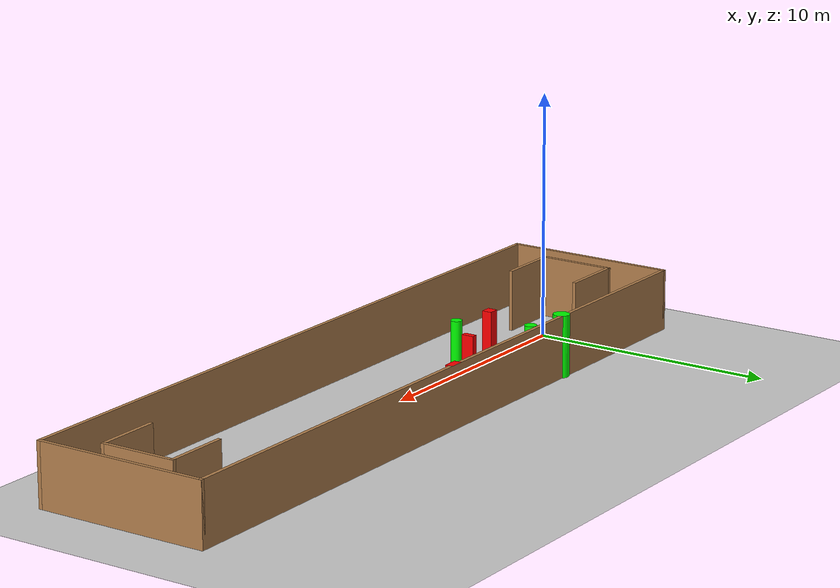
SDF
<sdf version="1.7">
 <world name="default">
  <light name="sun" type="directional">
   <pose>0 0 10 0 -0 0</pose>
   <diffuse>0.8 0.8 0.8 1</diffuse>
   <specular>0.2 0.2 0.2 1</specular>
   <attenuation>
    <range>1000</range>
    <constant>0.9</constant>
    <linear>0.01</linear>
    <quadratic>0.001</quadratic>
   </attenuation>
   <direction>-0.5 0.1 -0.9</direction>
   <spot><inner_angle>0</inner_angle><outer_angle>0</outer_angle><falloff>0</falloff></spot>
  </light>
  <model name="ground_plane">
   <static>1</static>
   <link name="link">
    <collision name="collision">
     <geometry><plane><normal>0 0 1</normal><size>100 100</size></plane></geometry>
     <surface>
      <contact><collide_bitmask>65535</collide_bitmask></contact>
      <friction><ode><mu>100</mu><mu2>50</mu2></ode></friction>
     </surface>
    </collision>
    <visual name="visual">
     <cast_shadows>0</cast_shadows>
     <geometry><plane><normal>0 0 1</normal><size>100 100</size></plane></geometry>
     <material>
      <script><uri>file://media/materials/scripts/gazebo.material</uri><name>Gazebo/Grey</name></script>
     </material>
    </visual>
   </link>
  </model>
  <gravity>0 0 -9.8</gravity>
  <magnetic_field>6e-06 2.3e-05 -4.2e-05</magnetic_field>
  <atmosphere type="adiabatic"/>
  <physics type="ode">
   <max_step_size>0.001</max_step_size>
   <real_time_factor>1</real_time_factor>
   <real_time_update_rate>1000</real_time_update_rate>
  </physics>
  <scene><ambient>0.4 0.4 0.4 1</ambient><background>0.7 0.7 0.7 1</background><shadows>1</shadows></scene>
  <spherical_coordinates>
   <surface_model>EARTH_WGS84</surface_model>
   <latitude_deg>0</latitude_deg>
   <longitude_deg>0</longitude_deg>
   <elevation>0</elevation>
   <heading_deg>0</heading_deg>
  </spherical_coordinates>
  <model name="my_base_walls">
   <link name="Wall_0">
    <collision name="Wall_0_Collision">
     <geometry><box><size>7.15 0.15 2.5</size></box></geometry>
     <pose>0 0 1.25 0 -0 0</pose>
    </collision>
    <visual name="Wall_0_Visual">
     <pose>0 0 1.25 0 -0 0</pose>
     <geometry><box><size>7.15 0.15 2.5</size></box></geometry>
     <material>
      <script><uri>file://media/materials/scripts/gazebo.material</uri><name>Gazebo/Wood</name></script>
      <ambient>1 1 1 1</ambient>
     </material>
     <meta><layer>0</layer></meta>
    </visual>
    <pose>-15 0 0 0 -0 1.5708</pose>
   </link>
   <link name="Wall_10">
    <collision name="Wall_10_Collision">
     <geometry><box><size>2.65 0.15 2.5</size></box></geometry>
     <pose>0 0 1.25 0 -0 0</pose>
    </collision>
    <visual name="Wall_10_Visual">
     <pose>0 0 1.25 0 -0 0</pose>
     <geometry><box><size>2.65 0.15 2.5</size></box></geometry>
     <material>
      <script><uri>file://media/materials/scripts/gazebo.material</uri><name>Gazebo/Wood</name></script>
      <ambient>1 1 1 1</ambient>
     </material>
     <meta><layer>0</layer></meta>
    </visual>
    <pose>-12.75 -1.5 0 0 -0 0</pose>
   </link>
   <link name="Wall_12">
    <collision name="Wall_12_Collision">
     <geometry><box><size>2.65 0.15 2.5</size></box></geometry>
     <pose>0 0 1.25 0 -0 0</pose>
    </collision>
    <visual name="Wall_12_Visual">
     <pose>0 0 1.25 0 -0 0</pose>
     <geometry><box><size>2.65 0.15 2.5</size></box></geometry>
     <material>
      <script><uri>file://media/materials/scripts/gazebo.material</uri><name>Gazebo/Wood</name></script>
      <ambient>1 1 1 1</ambient>
     </material>
     <meta><layer>0</layer></meta>
    </visual>
    <pose>-12.75 1.5 0 0 -0 0</pose>
   </link>
   <link name="Wall_14">
    <collision name="Wall_14_Collision">
     <geometry><box><size>3.15 0.15 2.5</size></box></geometry>
     <pose>0 0 1.25 0 -0 0</pose>
    </collision>
    <visual name="Wall_14_Visual">
     <pose>0 0 1.25 0 -0 0</pose>
     <geometry><box><size>3.15 0.15 2.5</size></box></geometry>
     <material>
      <script><uri>file://media/materials/scripts/gazebo.material</uri><name>Gazebo/Wood</name></script>
      <ambient>1 1 1 1</ambient>
     </material>
     <meta><layer>0</layer></meta>
    </visual>
    <pose>14 0 0 0 -0 -1.5708</pose>
   </link>
   <link name="Wall_15">
    <collision name="Wall_15_Collision">
     <geometry><box><size>2.65 0.15 2.5</size></box></geometry>
     <pose>0 0 1.25 0 -0 0</pose>
    </collision>
    <visual name="Wall_15_Visual">
     <pose>0 0 1.25 0 -0 0</pose>
     <geometry><box><size>2.65 0.15 2.5</size></box></geometry>
     <material>
      <script><uri>file://media/materials/scripts/gazebo.material</uri><name>Gazebo/Wood</name></script>
      <ambient>1 1 1 1</ambient>
     </material>
     <meta><layer>0</layer></meta>
    </visual>
    <pose>12.75 -1.5 0 0 -0 3.14159</pose>
   </link>
   <link name="Wall_17">
    <collision name="Wall_17_Collision">
     <geometry><box><size>2.65 0.15 2.5</size></box></geometry>
     <pose>0 0 1.25 0 -0 0</pose>
    </collision>
    <visual name="Wall_17_Visual">
     <pose>0 0 1.25 0 -0 0</pose>
     <geometry><box><size>2.65 0.15 2.5</size></box></geometry>
     <material>
      <script><uri>file://media/materials/scripts/gazebo.material</uri><name>Gazebo/Wood</name></script>
      <ambient>1 1 1 1</ambient>
     </material>
     <meta><layer>0</layer></meta>
    </visual>
    <pose>12.75 1.5 0 0 -0 3.14159</pose>
   </link>
   <link name="Wall_2">
    <collision name="Wall_2_Collision">
     <geometry><box><size>30.15 0.15 2.5</size></box></geometry>
     <pose>0 0 1.25 0 -0 0</pose>
    </collision>
    <visual name="Wall_2_Visual">
     <pose>0 0 1.25 0 -0 0</pose>
     <geometry><box><size>30.15 0.15 2.5</size></box></geometry>
     <material>
      <script><uri>file://media/materials/scripts/gazebo.material</uri><name>Gazebo/Wood</name></script>
      <ambient>1 1 1 1</ambient>
     </material>
     <meta><layer>0</layer></meta>
    </visual>
    <pose>-0 -3.5 0 0 -0 0</pose>
   </link>
   <link name="Wall_4">
    <collision name="Wall_4_Collision">
     <geometry><box><size>30.15 0.15 2.5</size></box></geometry>
     <pose>0 0 1.25 0 -0 0</pose>
    </collision>
    <visual name="Wall_4_Visual">
     <pose>0 0 1.25 0 -0 0</pose>
     <geometry><box><size>30.15 0.15 2.5</size></box></geometry>
     <material>
      <script><uri>file://media/materials/scripts/gazebo.material</uri><name>Gazebo/Wood</name></script>
      <ambient>1 1 1 1</ambient>
     </material>
     <meta><layer>0</layer></meta>
    </visual>
    <pose>-0 3.5 0 0 -0 0</pose>
   </link>
   <link name="Wall_6">
    <collision name="Wall_6_Collision">
     <geometry><box><size>7.15 0.15 2.5</size></box></geometry>
     <pose>0 0 1.25 0 -0 0</pose>
    </collision>
    <visual name="Wall_6_Visual">
     <pose>0 0 1.25 0 -0 0</pose>
     <geometry><box><size>7.15 0.15 2.5</size></box></geometry>
     <material>
      <script><uri>file://media/materials/scripts/gazebo.material</uri><name>Gazebo/Wood</name></script>
      <ambient>1 1 1 1</ambient>
     </material>
     <meta><layer>0</layer></meta>
    </visual>
    <pose>15 0 0 0 -0 -1.5708</pose>
   </link>
   <link name="Wall_9">
    <collision name="Wall_9_Collision">
     <geometry><box><size>3.15 0.15 2.5</size></box></geometry>
     <pose>0 0 1.25 0 -0 0</pose>
    </collision>
    <visual name="Wall_9_Visual">
     <pose>0 0 1.25 0 -0 0</pose>
     <geometry><box><size>3.15 0.15 2.5</size></box></geometry>
     <material>
      <script><uri>file://media/materials/scripts/gazebo.material</uri><name>Gazebo/Wood</name></script>
      <ambient>1 1 1 1</ambient>
     </material>
     <meta><layer>0</layer></meta>
    </visual>
    <pose>-14 0 0 0 -0 -1.5708</pose>
   </link>
   <static>1</static>
   <pose>11.5 0 0 0 -0 0</pose>
  </model>
  <model name="cylinder1">
   <static>1</static>
   <link name="link">
    <inertial>
     <mass>1</mass>
     <inertia><ixx>0.5</ixx><ixy>0</ixy><ixz>0</ixz><iyy>0.5</iyy><iyz>0</iyz><izz>1</izz></inertia>
    </inertial>
    <collision name="collision">
     <geometry><cylinder><radius>0.33302244531675307</radius><length>2.5</length></cylinder></geometry>
    </collision>
    <visual name="visual">
     <geometry><cylinder><radius>0.33302244531675307</radius><length>2.5</length></cylinder></geometry>
     <material>
      <ambient>0 1 0 1</ambient>
      <diffuse>0 1 0 1</diffuse>
      <specular>0.1 0.1 0.1 1</specular>
      <emissive>0 0 0 0</emissive>
     </material>
    </visual>
   </link>
   <pose>3.9622024789772716 3.3529948881364495 1.25 0 0 0</pose>
  </model>
  <model name="cylinder2">
   <static>1</static>
   <link name="link">
    <inertial>
     <mass>1</mass>
     <inertia><ixx>0.5</ixx><ixy>0</ixy><ixz>0</ixz><iyy>0.5</iyy><iyz>0</iyz><izz>1</izz></inertia>
    </inertial>
    <collision name="collision">
     <geometry><cylinder><radius>0.24349036131550061</radius><length>2.5</length></cylinder></geometry>
    </collision>
    <visual name="visual">
     <geometry><cylinder><radius>0.24349036131550061</radius><length>2.5</length></cylinder></geometry>
     <material>
      <ambient>0 1 0 1</ambient>
      <diffuse>0 1 0 1</diffuse>
      <specular>0.1 0.1 0.1 1</specular>
      <emissive>0 0 0 0</emissive>
     </material>
    </visual>
   </link>
   <pose>5.860027484212127 3.167158260159316 1.25 0 0 0</pose>
  </model>
  <model name="cylinder3">
   <static>1</static>
   <link name="link">
    <inertial>
     <mass>1</mass>
     <inertia><ixx>0.5</ixx><ixy>0</ixy><ixz>0</ixz><iyy>0.5</iyy><iyz>0</iyz><izz>1</izz></inertia>
    </inertial>
    <collision name="collision">
     <geometry><cylinder><radius>0.22510452576443957</radius><length>2.5</length></cylinder></geometry>
    </collision>
    <visual name="visual">
     <geometry><cylinder><radius>0.22510452576443957</radius><length>2.5</length></cylinder></geometry>
     <material>
      <ambient>0 1 0 1</ambient>
      <diffuse>0 1 0 1</diffuse>
      <specular>0.1 0.1 0.1 1</specular>
      <emissive>0 0 0 0</emissive>
     </material>
    </visual>
   </link>
   <pose>6.916850458058843 0.4605664959413147 1.25 0 0 0</pose>
  </model>
  <model name="box1">
   <static>1</static>
   <link name="link">
    <inertial>
     <mass>1</mass>
     <inertia><ixx>0.083</ixx><ixy>0</ixy><ixz>0</ixz><iyy>0.083</iyy><iyz>0</iyz><izz>0.083</izz></inertia>
    </inertial>
    <collision name="collision">
     <geometry><box><size>0.2398642376828941 0.48890972720919734 2.5</size></box></geometry>
    </collision>
    <visual name="visual">
     <geometry><box><size>0.2398642376828941 0.48890972720919734 2.5</size></box></geometry>
     <material>
      <ambient>1 0 0 1</ambient>
      <diffuse>1 0 0 1</diffuse>
      <specular>0.1 0.1 0.1 1</specular>
      <emissive>0 0 0 0</emissive>
     </material>
    </visual>
    <sensor name="my_contact" type="contact">
     <contact><collision>box_collision</collision><topic>__default_topic__</topic></contact>
    </sensor>
   </link>
   <pose>8.211286068588919 1.9125580131547197 1.25 0 0 0</pose>
  </model>
  <model name="box2">
   <static>1</static>
   <link name="link">
    <inertial>
     <mass>1</mass>
     <inertia><ixx>0.083</ixx><ixy>0</ixy><ixz>0</ixz><iyy>0.083</iyy><iyz>0</iyz><izz>0.083</izz></inertia>
    </inertial>
    <collision name="collision">
     <geometry><box><size>0.5900297358653488 0.3121614612809426 2.5</size></box></geometry>
    </collision>
    <visual name="visual">
     <geometry><box><size>0.5900297358653488 0.3121614612809426 2.5</size></box></geometry>
     <material>
      <ambient>1 0 0 1</ambient>
      <diffuse>1 0 0 1</diffuse>
      <specular>0.1 0.1 0.1 1</specular>
      <emissive>0 0 0 0</emissive>
     </material>
    </visual>
    <sensor name="my_contact" type="contact">
     <contact><collision>box_collision</collision><topic>__default_topic__</topic></contact>
    </sensor>
   </link>
   <pose>11.495557279276573 3.418416217489363 1.25 0 0 0</pose>
  </model>
  <model name="box3">
   <static>1</static>
   <link name="link">
    <inertial>
     <mass>1</mass>
     <inertia><ixx>0.083</ixx><ixy>0</ixy><ixz>0</ixz><iyy>0.083</iyy><iyz>0</iyz><izz>0.083</izz></inertia>
    </inertial>
    <collision name="collision">
     <geometry><box><size>0.425302593280972 0.39847732064674934 2.5</size></box></geometry>
    </collision>
    <visual name="visual">
     <geometry><box><size>0.425302593280972 0.39847732064674934 2.5</size></box></geometry>
     <material>
      <ambient>1 0 0 1</ambient>
      <diffuse>1 0 0 1</diffuse>
      <specular>0.1 0.1 0.1 1</specular>
      <emissive>0 0 0 0</emissive>
     </material>
    </visual>
    <sensor name="my_contact" type="contact">
     <contact><collision>box_collision</collision><topic>__default_topic__</topic></contact>
    </sensor>
   </link>
   <pose>5.113391432653973 0.7991962058974993 1.25 0 0 0</pose>
  </model>
 </world>
</sdf>
